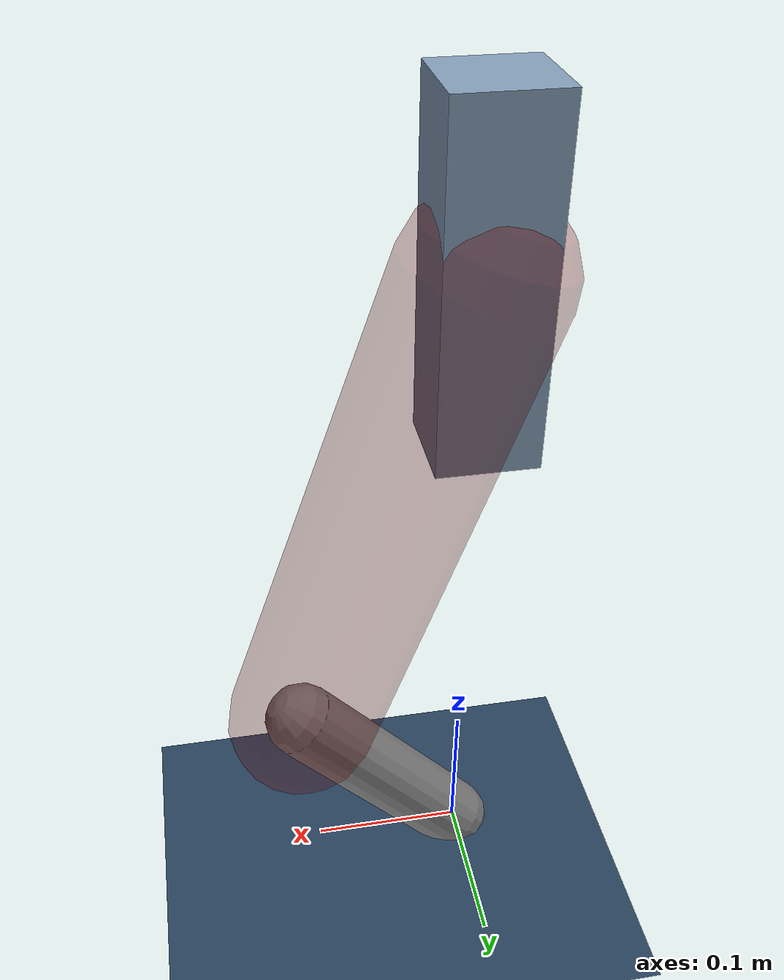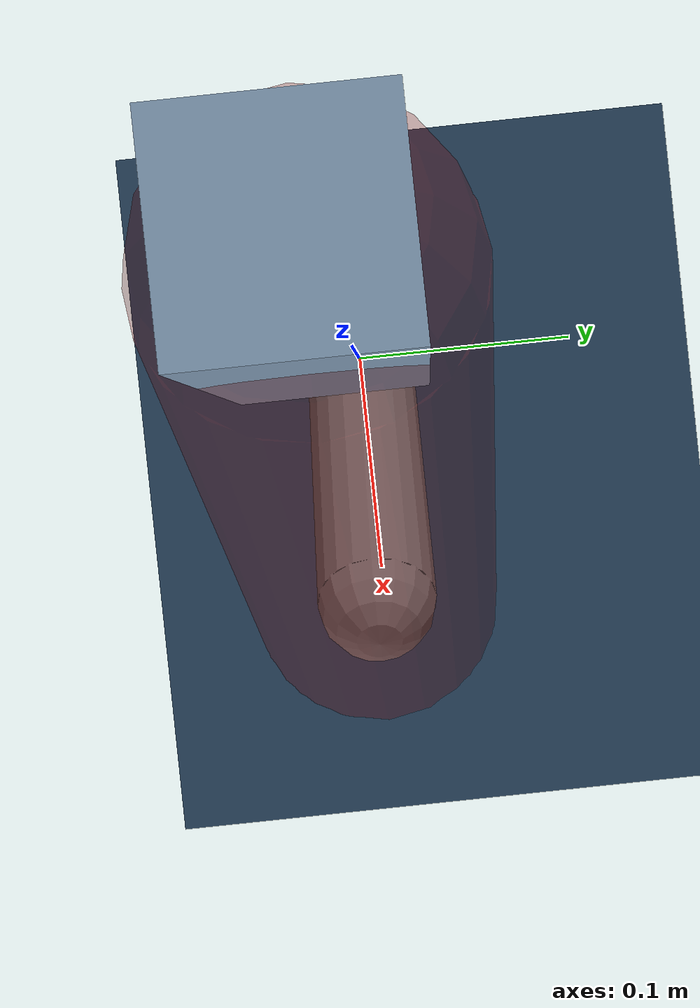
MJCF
<mujoco model="Hopper2D">
	<compiler inertiafromgeom="true" angle="radian" />
	<option timestep="0.001" integrator="implicit" cone="elliptic" solver="Newton" tolerance="1e-10" />

	<default>
		<geom contype="1" conaffinity="1" condim="3" friction="2 0.005 0.0001" solref="0.005 1" />
		<joint limited="true" damping="0.1" />
	</default>

	<asset>
		<texture name="skybox" type="skybox" builtin="gradient" rgb1=".4 .6 .8" rgb2="0 0 0" width="800" height="800" />
		<texture name="grid" type="2d" builtin="checker" rgb1=".1 .2 .3" rgb2=".2 .3 .4" width="300" height="300" mark="edge" markrgb=".2 .3 .4" />
		<material name="ground" texture="grid" texrepeat="1 1" texuniform="true" reflectance="0.1" />
		<material name="leg" rgba="0.5 0.6 0.7 1" />
	</asset>

	<worldbody>

		<geom name="floor" type="plane" size="5 5 0.25" material="ground" />

		<light directional="false" diffuse="0.8 0.8 0.8" specular="0.3 0.3 0.3" pos="0 0 2" dir="0 0 -1" />
		<light mode="targetbodycom" target="base" directional="false" diffuse="0.8 0.8 0.8" specular="0.3 0.3 0.3" pos="0 0 2" dir="0 0 -1" />

		<camera name="fixed" pos="0 -2 1" xyaxes="1 0 0 0 0 1" />
		<camera name="tracking" mode="trackcom" pos="0 -3 1" />

		<body name="root" pos="0 0 0.42827649903479">
			<joint name="slide_x" type="slide" axis="1 0 0" range="-100 100" />
			<joint name="slide_z" type="slide" axis="0 0 1" range="0 10" />

			<body name="base" pos="0 0 0">
				<geom name="torso" type="box" size="0.03 0.03 0.1" mass="2.381" material="leg" />

				<body name="link1" pos="0 0 0" euler="0 1.2290251389792122 0">
					<joint type="hinge" axis="0 -1 0" pos="0 0 0" name="hinge1" limited="true" range="-3.14 3.14" stiffness="0" damping="0.1" />
					<geom name="thigh" type="capsule" fromto="0 0 0 0.3250039452479545 0 0" size="0.05" rgba="0.5 0 0 0.3" mass="1.0570110466942726" />

					<body name="link2" pos="0.3250039452479545 0 0" euler="0 1.070334575719368 0">
						<joint type="hinge" axis="0 -1 0" pos="0 0 0" name="hinge2" limited="true" range="-3.14 3.14" stiffness="0" damping="0.1" />
						<geom name="shank" type="capsule" fromto="0 0 0 0.16360378324119745 0 0" size="0.025" mass="0.3697434049170777" />

					</body>
				</body>
			</body>
		</body>
	</worldbody>

	<actuator>
		<motor name="torque1" joint="hinge1" ctrlrange="-68.83058644581287 68.83058644581287" ctrllimited="true" gear="1" />
		<motor name="torque2" joint="hinge2" ctrlrange="-32.097633422829155 32.097633422829155" ctrllimited="true" gear="1" />
	</actuator>
</mujoco>
